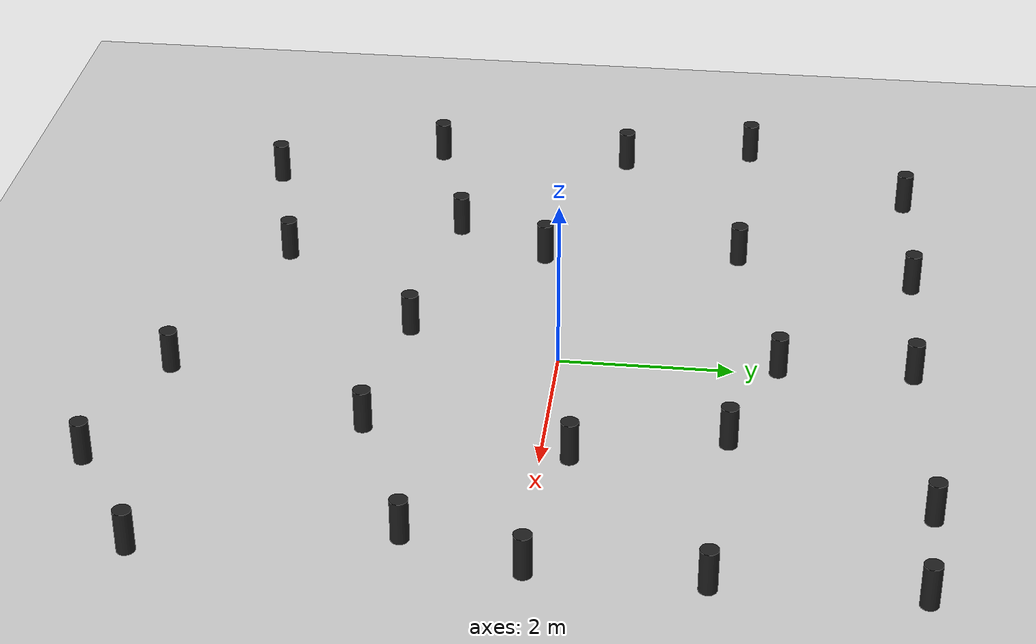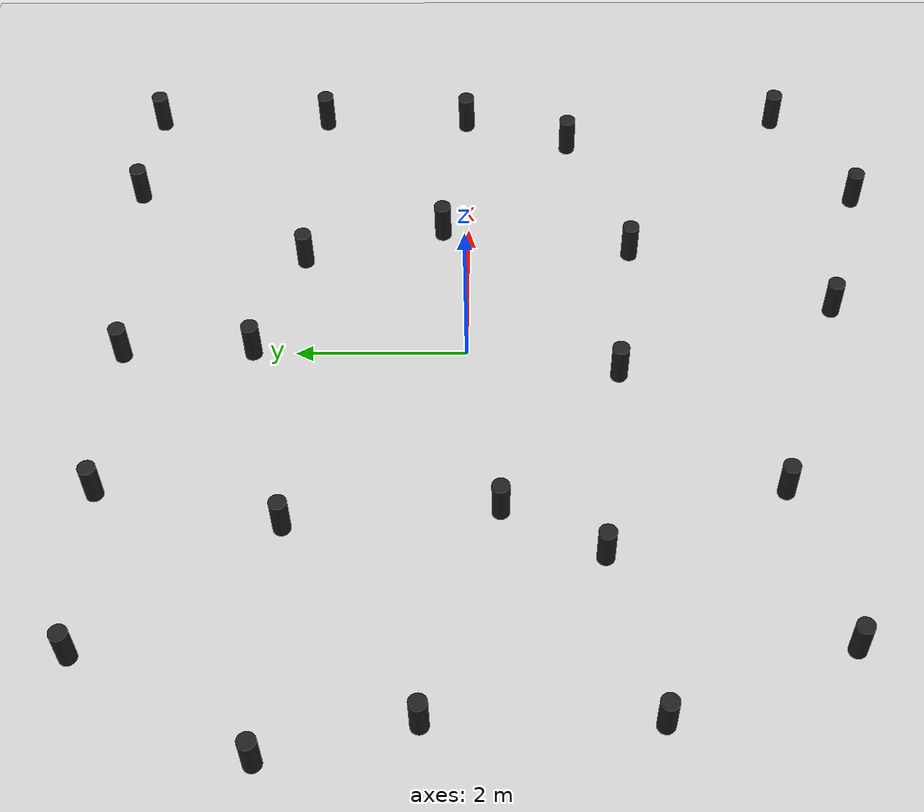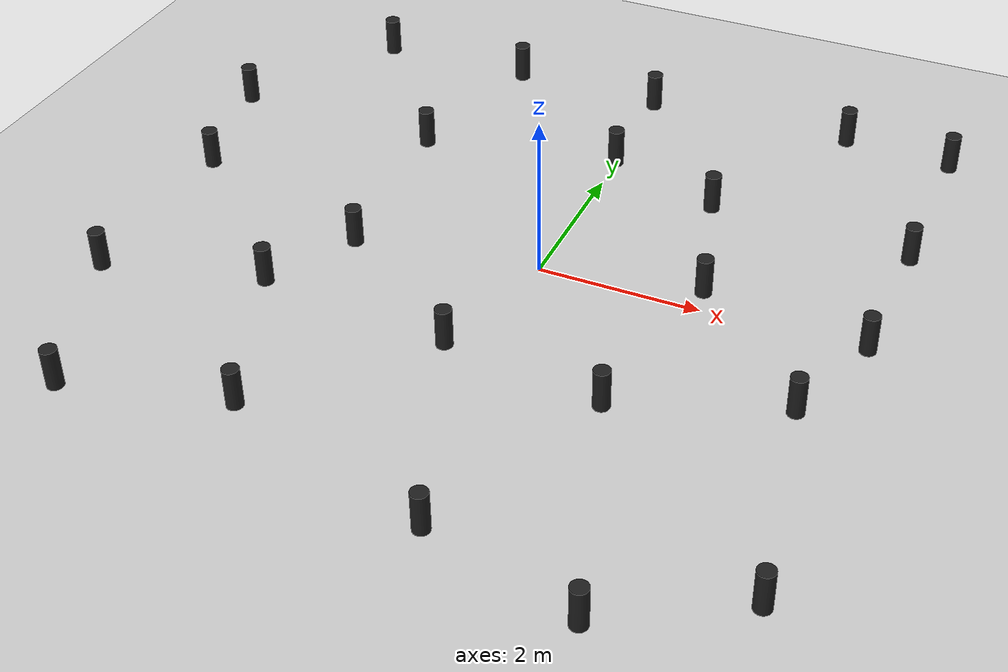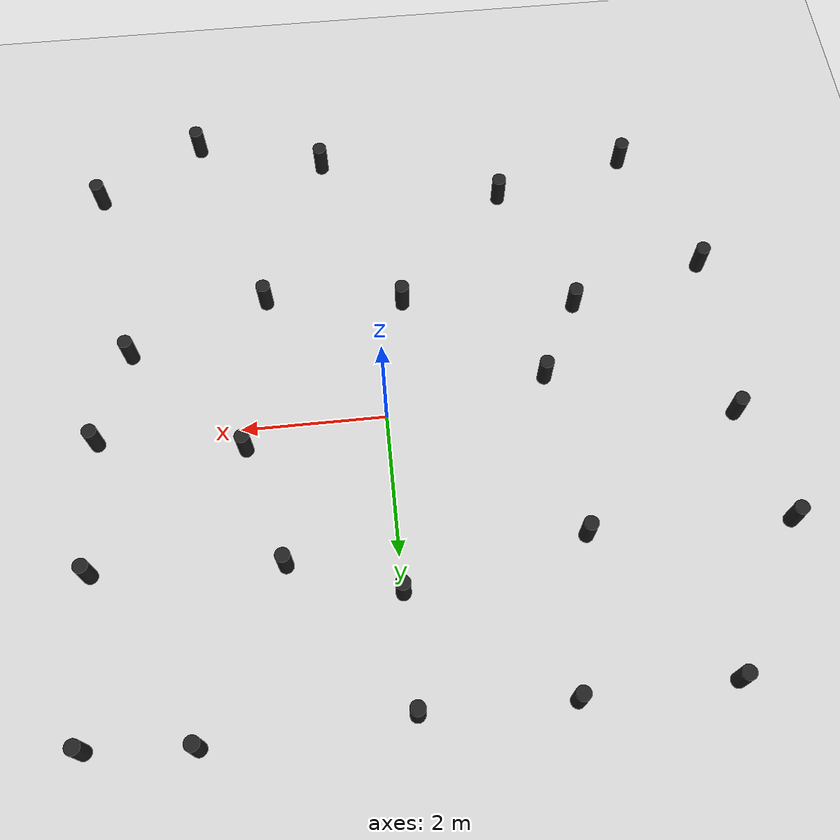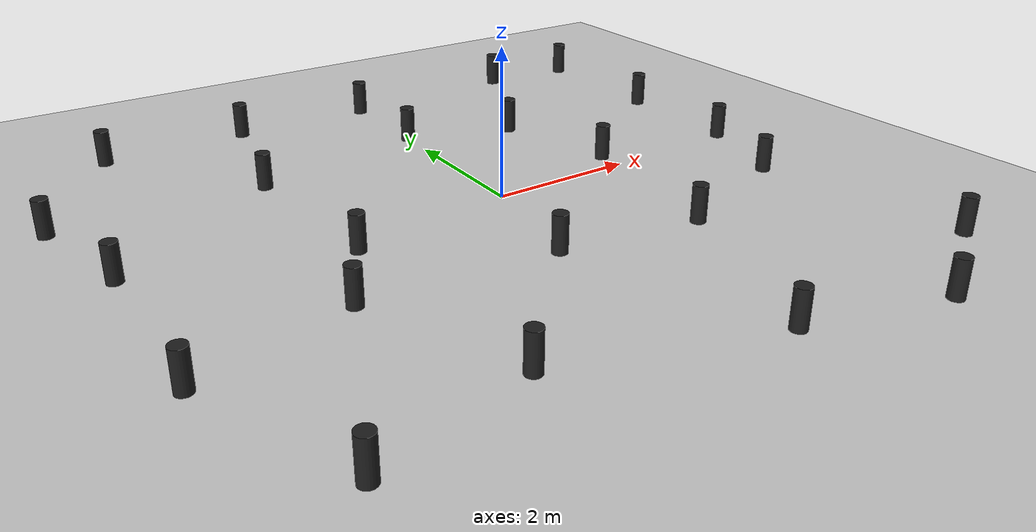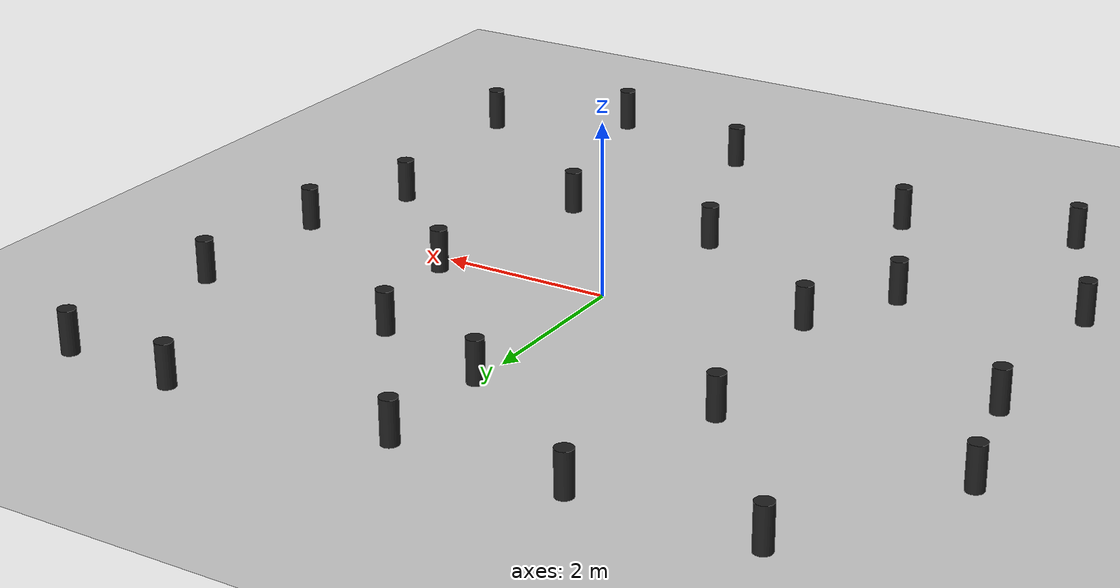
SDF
<sdf version="1.6">
 <world name="landmarks">
  <plugin filename="ignition-gazebo-contact-system" name="gz::sim::systems::Contact"/>
  <plugin filename="ignition-gazebo-imu-system" name="gz::sim::systems::Imu"/>
  <plugin filename="ignition-gazebo-physics-system" name="gz::sim::systems::Physics"/>
  <plugin filename="ignition-gazebo-scene-broadcaster-system" name="gz::sim::systems::SceneBroadcaster"/>
  <plugin filename="ignition-gazebo-sensors-system" name="gz::sim::systems::Sensors"/>
  <plugin filename="ignition-gazebo-user-commands-system" name="gz::sim::systems::UserCommands"/>
  <light name="sun" type="directional">
   <pose>0 0 10 0 -0 0</pose>
   <diffuse>0.8 0.8 0.8 1</diffuse>
   <specular>0.2 0.2 0.2 1</specular>
   <attenuation>
    <range>1000</range>
    <constant>0.9</constant>
    <linear>0.01</linear>
    <quadratic>0.001</quadratic>
   </attenuation>
   <direction>-0.5 0.1 -0.9</direction>
   <spot><inner_angle>0</inner_angle><outer_angle>0</outer_angle><falloff>0</falloff></spot>
  </light>
  <model name="ground_plane">
   <static>1</static>
   <link name="link">
    <collision name="collision">
     <geometry><plane><normal>0 0 1</normal><size>100 100</size></plane></geometry>
     <surface>
      <contact><collide_bitmask>65535</collide_bitmask></contact>
      <friction><ode><mu>100</mu><mu2>50</mu2></ode></friction>
     </surface>
    </collision>
    <visual name="visual">
     <cast_shadows>0</cast_shadows>
     <geometry><plane><normal>0 0 1</normal><size>100 100</size></plane></geometry>
     <material>
      <ambient>0.8 0.8 0.8 1</ambient>
      <diffuse>0.8 0.8 0.8 1</diffuse>
      <specular>0.8 0.8 0.8 1</specular>
     </material>
    </visual>
   </link>
  </model>
  <gravity>0 0 -9.8</gravity>
  <magnetic_field>6e-06 2.3e-05 -4.2e-05</magnetic_field>
  <atmosphere type="adiabatic"/>
  <physics name="default_physics" default="0" type="ode">
   <max_step_size>0.001</max_step_size>
   <real_time_factor>1</real_time_factor>
   <real_time_update_rate>1000</real_time_update_rate>
  </physics>
  <scene><ambient>0.4 0.4 0.4 1</ambient><background>0.7 0.7 0.7 1</background><shadows>1</shadows></scene>
  <spherical_coordinates>
   <surface_model>EARTH_WGS84</surface_model>
   <latitude_deg>0</latitude_deg>
   <longitude_deg>0</longitude_deg>
   <elevation>0</elevation>
   <heading_deg>0</heading_deg>
  </spherical_coordinates>
  <model name="cylinder">
   <link name="link">
    <inertial>
     <mass>1</mass>
     <inertia><ixx>0.145833</ixx><ixy>0</ixy><ixz>0</ixz><iyy>0.145833</iyy><iyz>0</iyz><izz>0.125</izz></inertia>
    </inertial>
    <visual name="visual">
     <geometry><cylinder><radius>0.1</radius><length>0.5</length></cylinder></geometry>
     <material>
      <script><name>Gazebo/Black</name><uri>file://media/materials/scripts/gazebo.material</uri></script>
      <shader type="vertex"><normal_map>__default__</normal_map></shader>
      <ambient>0.3 0.3 0.3 1</ambient>
      <diffuse>0.7 0.7 0.7 1</diffuse>
      <specular>0.01 0.01 0.01 1</specular>
      <emissive>0 0 0 1</emissive>
     </material>
    </visual>
    <collision name="collision">
     <geometry><cylinder><radius>0.035</radius><length>0.2</length></cylinder></geometry>
     <surface>
      <friction>
       <ode><mu>1</mu><mu2>1</mu2><fdir1>0 0 0</fdir1><slip1>0</slip1><slip2>0</slip2></ode>
       <torsional>
        <coefficient>1</coefficient>
        <patch_radius>0</patch_radius>
        <surface_radius>0</surface_radius>
        <use_patch_radius>1</use_patch_radius>
        <ode><slip>0</slip></ode>
       </torsional>
      </friction>
      <bounce><restitution_coefficient>0</restitution_coefficient><threshold>1e+06</threshold></bounce>
      <contact>
       <collide_without_contact>0</collide_without_contact>
       <collide_without_contact_bitmask>1</collide_without_contact_bitmask>
       <collide_bitmask>1</collide_bitmask>
       <ode>
        <soft_cfm>0</soft_cfm>
        <soft_erp>0.2</soft_erp>
        <kp>1e+13</kp>
        <kd>1</kd>
        <max_vel>0.01</max_vel>
        <min_depth>0</min_depth>
       </ode>
       <bullet>
        <split_impulse>1</split_impulse>
        <split_impulse_penetration_threshold>-0.01</split_impulse_penetration_threshold>
        <soft_cfm>0</soft_cfm>
        <soft_erp>0.2</soft_erp>
        <kp>1e+13</kp>
        <kd>1</kd>
       </bullet>
      </contact>
     </surface>
    </collision>
   </link>
   <static>1</static>
   <pose>-2.83111 -1.49656 0.258849 0 -0 0</pose>
  </model>
  <model name="cylinder_clone">
   <link name="link">
    <inertial>
     <mass>1</mass>
     <inertia><ixx>0.145833</ixx><ixy>0</ixy><ixz>0</ixz><iyy>0.145833</iyy><iyz>0</iyz><izz>0.125</izz></inertia>
    </inertial>
    <visual name="visual">
     <geometry><cylinder><radius>0.1</radius><length>0.5</length></cylinder></geometry>
     <material>
      <script><name>Gazebo/Black</name><uri>file://media/materials/scripts/gazebo.material</uri></script>
      <shader type="vertex"><normal_map>__default__</normal_map></shader>
      <ambient>0.3 0.3 0.3 1</ambient>
      <diffuse>0.7 0.7 0.7 1</diffuse>
      <specular>0.01 0.01 0.01 1</specular>
      <emissive>0 0 0 1</emissive>
     </material>
    </visual>
    <collision name="collision">
     <geometry><cylinder><radius>0.1</radius><length>0.2</length></cylinder></geometry>
     <surface>
      <friction>
       <ode><mu>1</mu><mu2>1</mu2><fdir1>0 0 0</fdir1><slip1>0</slip1><slip2>0</slip2></ode>
       <torsional>
        <coefficient>1</coefficient>
        <patch_radius>0</patch_radius>
        <surface_radius>0</surface_radius>
        <use_patch_radius>1</use_patch_radius>
        <ode><slip>0</slip></ode>
       </torsional>
      </friction>
      <bounce><restitution_coefficient>0</restitution_coefficient><threshold>1e+06</threshold></bounce>
      <contact>
       <collide_without_contact>0</collide_without_contact>
       <collide_without_contact_bitmask>1</collide_without_contact_bitmask>
       <collide_bitmask>1</collide_bitmask>
       <ode>
        <soft_cfm>0</soft_cfm>
        <soft_erp>0.2</soft_erp>
        <kp>1e+13</kp>
        <kd>1</kd>
        <max_vel>0.01</max_vel>
        <min_depth>0</min_depth>
       </ode>
       <bullet>
        <split_impulse>1</split_impulse>
        <split_impulse_penetration_threshold>-0.01</split_impulse_penetration_threshold>
        <soft_cfm>0</soft_cfm>
        <soft_erp>0.2</soft_erp>
        <kp>1e+13</kp>
        <kd>1</kd>
       </bullet>
      </contact>
     </surface>
    </collision>
   </link>
   <static>1</static>
   <pose>-2.45518 1.96069 0.258849 0 -0 0</pose>
  </model>
  <model name="cylinder_clone_clone">
   <link name="link">
    <inertial>
     <mass>1</mass>
     <inertia><ixx>0.145833</ixx><ixy>0</ixy><ixz>0</ixz><iyy>0.145833</iyy><iyz>0</iyz><izz>0.125</izz></inertia>
    </inertial>
    <visual name="visual">
     <geometry><cylinder><radius>0.1</radius><length>0.5</length></cylinder></geometry>
     <material>
      <script><name>Gazebo/Black</name><uri>file://media/materials/scripts/gazebo.material</uri></script>
      <shader type="vertex"><normal_map>__default__</normal_map></shader>
      <ambient>0.3 0.3 0.3 1</ambient>
      <diffuse>0.7 0.7 0.7 1</diffuse>
      <specular>0.01 0.01 0.01 1</specular>
      <emissive>0 0 0 1</emissive>
     </material>
    </visual>
    <collision name="collision">
     <geometry><cylinder><radius>0.1</radius><length>0.2</length></cylinder></geometry>
     <surface>
      <friction>
       <ode><mu>1</mu><mu2>1</mu2><fdir1>0 0 0</fdir1><slip1>0</slip1><slip2>0</slip2></ode>
       <torsional>
        <coefficient>1</coefficient>
        <patch_radius>0</patch_radius>
        <surface_radius>0</surface_radius>
        <use_patch_radius>1</use_patch_radius>
        <ode><slip>0</slip></ode>
       </torsional>
      </friction>
      <bounce><restitution_coefficient>0</restitution_coefficient><threshold>1e+06</threshold></bounce>
      <contact>
       <collide_without_contact>0</collide_without_contact>
       <collide_without_contact_bitmask>1</collide_without_contact_bitmask>
       <collide_bitmask>1</collide_bitmask>
       <ode>
        <soft_cfm>0</soft_cfm>
        <soft_erp>0.2</soft_erp>
        <kp>1e+13</kp>
        <kd>1</kd>
        <max_vel>0.01</max_vel>
        <min_depth>0</min_depth>
       </ode>
       <bullet>
        <split_impulse>1</split_impulse>
        <split_impulse_penetration_threshold>-0.01</split_impulse_penetration_threshold>
        <soft_cfm>0</soft_cfm>
        <soft_erp>0.2</soft_erp>
        <kp>1e+13</kp>
        <kd>1</kd>
       </bullet>
      </contact>
     </surface>
    </collision>
   </link>
   <static>1</static>
   <pose>-3.9406 -3.99733 0.258849 0 -0 0</pose>
  </model>
  <model name="cylinder_clone_clone_0">
   <link name="link">
    <inertial>
     <mass>1</mass>
     <inertia><ixx>0.145833</ixx><ixy>0</ixy><ixz>0</ixz><iyy>0.145833</iyy><iyz>0</iyz><izz>0.125</izz></inertia>
    </inertial>
    <visual name="visual">
     <geometry><cylinder><radius>0.1</radius><length>0.5</length></cylinder></geometry>
     <material>
      <script><name>Gazebo/Black</name><uri>file://media/materials/scripts/gazebo.material</uri></script>
      <shader type="vertex"><normal_map>__default__</normal_map></shader>
      <ambient>0.3 0.3 0.3 1</ambient>
      <diffuse>0.7 0.7 0.7 1</diffuse>
      <specular>0.01 0.01 0.01 1</specular>
      <emissive>0 0 0 1</emissive>
     </material>
    </visual>
    <collision name="collision">
     <geometry><cylinder><radius>0.1</radius><length>0.2</length></cylinder></geometry>
     <surface>
      <friction>
       <ode><mu>1</mu><mu2>1</mu2><fdir1>0 0 0</fdir1><slip1>0</slip1><slip2>0</slip2></ode>
       <torsional>
        <coefficient>1</coefficient>
        <patch_radius>0</patch_radius>
        <surface_radius>0</surface_radius>
        <use_patch_radius>1</use_patch_radius>
        <ode><slip>0</slip></ode>
       </torsional>
      </friction>
      <bounce><restitution_coefficient>0</restitution_coefficient><threshold>1e+06</threshold></bounce>
      <contact>
       <collide_without_contact>0</collide_without_contact>
       <collide_without_contact_bitmask>1</collide_without_contact_bitmask>
       <collide_bitmask>1</collide_bitmask>
       <ode>
        <soft_cfm>0</soft_cfm>
        <soft_erp>0.2</soft_erp>
        <kp>1e+13</kp>
        <kd>1</kd>
        <max_vel>0.01</max_vel>
        <min_depth>0</min_depth>
       </ode>
       <bullet>
        <split_impulse>1</split_impulse>
        <split_impulse_penetration_threshold>-0.01</split_impulse_penetration_threshold>
        <soft_cfm>0</soft_cfm>
        <soft_erp>0.2</soft_erp>
        <kp>1e+13</kp>
        <kd>1</kd>
       </bullet>
      </contact>
     </surface>
    </collision>
   </link>
   <static>1</static>
   <pose>-4.00844 3.99162 0.258849 0 -0 0</pose>
  </model>
  <model name="cylinder_clone_clone_1">
   <link name="link">
    <inertial>
     <mass>1</mass>
     <inertia><ixx>0.145833</ixx><ixy>0</ixy><ixz>0</ixz><iyy>0.145833</iyy><iyz>0</iyz><izz>0.125</izz></inertia>
    </inertial>
    <visual name="visual">
     <geometry><cylinder><radius>0.1</radius><length>0.5</length></cylinder></geometry>
     <material>
      <script><name>Gazebo/Black</name><uri>file://media/materials/scripts/gazebo.material</uri></script>
      <shader type="vertex"><normal_map>__default__</normal_map></shader>
      <ambient>0.3 0.3 0.3 1</ambient>
      <diffuse>0.7 0.7 0.7 1</diffuse>
      <specular>0.01 0.01 0.01 1</specular>
      <emissive>0 0 0 1</emissive>
     </material>
    </visual>
    <collision name="collision">
     <geometry><cylinder><radius>0.1</radius><length>0.2</length></cylinder></geometry>
     <surface>
      <friction>
       <ode><mu>1</mu><mu2>1</mu2><fdir1>0 0 0</fdir1><slip1>0</slip1><slip2>0</slip2></ode>
       <torsional>
        <coefficient>1</coefficient>
        <patch_radius>0</patch_radius>
        <surface_radius>0</surface_radius>
        <use_patch_radius>1</use_patch_radius>
        <ode><slip>0</slip></ode>
       </torsional>
      </friction>
      <bounce><restitution_coefficient>0</restitution_coefficient><threshold>1e+06</threshold></bounce>
      <contact>
       <collide_without_contact>0</collide_without_contact>
       <collide_without_contact_bitmask>1</collide_without_contact_bitmask>
       <collide_bitmask>1</collide_bitmask>
       <ode>
        <soft_cfm>0</soft_cfm>
        <soft_erp>0.2</soft_erp>
        <kp>1e+13</kp>
        <kd>1</kd>
        <max_vel>0.01</max_vel>
        <min_depth>0</min_depth>
       </ode>
       <bullet>
        <split_impulse>1</split_impulse>
        <split_impulse_penetration_threshold>-0.01</split_impulse_penetration_threshold>
        <soft_cfm>0</soft_cfm>
        <soft_erp>0.2</soft_erp>
        <kp>1e+13</kp>
        <kd>1</kd>
       </bullet>
      </contact>
     </surface>
    </collision>
   </link>
   <static>1</static>
   <pose>1.57872 -1.97923 0.258849 0 -0 0</pose>
  </model>
  <model name="cylinder_clone_clone_2">
   <link name="link">
    <inertial>
     <mass>1</mass>
     <inertia><ixx>0.145833</ixx><ixy>0</ixy><ixz>0</ixz><iyy>0.145833</iyy><iyz>0</iyz><izz>0.125</izz></inertia>
    </inertial>
    <visual name="visual">
     <geometry><cylinder><radius>0.1</radius><length>0.5</length></cylinder></geometry>
     <material>
      <script><name>Gazebo/Black</name><uri>file://media/materials/scripts/gazebo.material</uri></script>
      <shader type="vertex"><normal_map>__default__</normal_map></shader>
      <ambient>0.3 0.3 0.3 1</ambient>
      <diffuse>0.7 0.7 0.7 1</diffuse>
      <specular>0.01 0.01 0.01 1</specular>
      <emissive>0 0 0 1</emissive>
     </material>
    </visual>
    <collision name="collision">
     <geometry><cylinder><radius>0.1</radius><length>0.2</length></cylinder></geometry>
     <surface>
      <friction>
       <ode><mu>1</mu><mu2>1</mu2><fdir1>0 0 0</fdir1><slip1>0</slip1><slip2>0</slip2></ode>
       <torsional>
        <coefficient>1</coefficient>
        <patch_radius>0</patch_radius>
        <surface_radius>0</surface_radius>
        <use_patch_radius>1</use_patch_radius>
        <ode><slip>0</slip></ode>
       </torsional>
      </friction>
      <bounce><restitution_coefficient>0</restitution_coefficient><threshold>1e+06</threshold></bounce>
      <contact>
       <collide_without_contact>0</collide_without_contact>
       <collide_without_contact_bitmask>1</collide_without_contact_bitmask>
       <collide_bitmask>1</collide_bitmask>
       <ode>
        <soft_cfm>0</soft_cfm>
        <soft_erp>0.2</soft_erp>
        <kp>1e+13</kp>
        <kd>1</kd>
        <max_vel>0.01</max_vel>
        <min_depth>0</min_depth>
       </ode>
       <bullet>
        <split_impulse>1</split_impulse>
        <split_impulse_penetration_threshold>-0.01</split_impulse_penetration_threshold>
        <soft_cfm>0</soft_cfm>
        <soft_erp>0.2</soft_erp>
        <kp>1e+13</kp>
        <kd>1</kd>
       </bullet>
      </contact>
     </surface>
    </collision>
   </link>
   <static>1</static>
   <pose>1.46099 1.99578 0.258849 0 -0 0</pose>
  </model>
  <model name="cylinder_clone_clone_3">
   <link name="link">
    <inertial>
     <mass>1</mass>
     <inertia><ixx>0.145833</ixx><ixy>0</ixy><ixz>0</ixz><iyy>0.145833</iyy><iyz>0</iyz><izz>0.125</izz></inertia>
    </inertial>
    <visual name="visual">
     <geometry><cylinder><radius>0.1</radius><length>0.5</length></cylinder></geometry>
     <material>
      <script><name>Gazebo/Black</name><uri>file://media/materials/scripts/gazebo.material</uri></script>
      <shader type="vertex"><normal_map>__default__</normal_map></shader>
      <ambient>0.3 0.3 0.3 1</ambient>
      <diffuse>0.7 0.7 0.7 1</diffuse>
      <specular>0.01 0.01 0.01 1</specular>
      <emissive>0 0 0 1</emissive>
     </material>
    </visual>
    <collision name="collision">
     <geometry><cylinder><radius>0.1</radius><length>0.2</length></cylinder></geometry>
     <surface>
      <friction>
       <ode><mu>1</mu><mu2>1</mu2><fdir1>0 0 0</fdir1><slip1>0</slip1><slip2>0</slip2></ode>
       <torsional>
        <coefficient>1</coefficient>
        <patch_radius>0</patch_radius>
        <surface_radius>0</surface_radius>
        <use_patch_radius>1</use_patch_radius>
        <ode><slip>0</slip></ode>
       </torsional>
      </friction>
      <bounce><restitution_coefficient>0</restitution_coefficient><threshold>1e+06</threshold></bounce>
      <contact>
       <collide_without_contact>0</collide_without_contact>
       <collide_without_contact_bitmask>1</collide_without_contact_bitmask>
       <collide_bitmask>1</collide_bitmask>
       <ode>
        <soft_cfm>0</soft_cfm>
        <soft_erp>0.2</soft_erp>
        <kp>1e+13</kp>
        <kd>1</kd>
        <max_vel>0.01</max_vel>
        <min_depth>0</min_depth>
       </ode>
       <bullet>
        <split_impulse>1</split_impulse>
        <split_impulse_penetration_threshold>-0.01</split_impulse_penetration_threshold>
        <soft_cfm>0</soft_cfm>
        <soft_erp>0.2</soft_erp>
        <kp>1e+13</kp>
        <kd>1</kd>
       </bullet>
      </contact>
     </surface>
    </collision>
   </link>
   <static>1</static>
   <pose>3.96666 4.06132 0.258849 0 -0 0</pose>
  </model>
  <model name="cylinder_clone_clone_4">
   <link name="link">
    <inertial>
     <mass>1</mass>
     <inertia><ixx>0.145833</ixx><ixy>0</ixy><ixz>0</ixz><iyy>0.145833</iyy><iyz>0</iyz><izz>0.125</izz></inertia>
    </inertial>
    <visual name="visual">
     <geometry><cylinder><radius>0.1</radius><length>0.5</length></cylinder></geometry>
     <material>
      <script><name>Gazebo/Black</name><uri>file://media/materials/scripts/gazebo.material</uri></script>
      <shader type="vertex"><normal_map>__default__</normal_map></shader>
      <ambient>0.3 0.3 0.3 1</ambient>
      <diffuse>0.7 0.7 0.7 1</diffuse>
      <specular>0.01 0.01 0.01 1</specular>
      <emissive>0 0 0 1</emissive>
     </material>
    </visual>
    <collision name="collision">
     <geometry><cylinder><radius>0.1</radius><length>0.2</length></cylinder></geometry>
     <surface>
      <friction>
       <ode><mu>1</mu><mu2>1</mu2><fdir1>0 0 0</fdir1><slip1>0</slip1><slip2>0</slip2></ode>
       <torsional>
        <coefficient>1</coefficient>
        <patch_radius>0</patch_radius>
        <surface_radius>0</surface_radius>
        <use_patch_radius>1</use_patch_radius>
        <ode><slip>0</slip></ode>
       </torsional>
      </friction>
      <bounce><restitution_coefficient>0</restitution_coefficient><threshold>1e+06</threshold></bounce>
      <contact>
       <collide_without_contact>0</collide_without_contact>
       <collide_without_contact_bitmask>1</collide_without_contact_bitmask>
       <collide_bitmask>1</collide_bitmask>
       <ode>
        <soft_cfm>0</soft_cfm>
        <soft_erp>0.2</soft_erp>
        <kp>1e+13</kp>
        <kd>1</kd>
        <max_vel>0.01</max_vel>
        <min_depth>0</min_depth>
       </ode>
       <bullet>
        <split_impulse>1</split_impulse>
        <split_impulse_penetration_threshold>-0.01</split_impulse_penetration_threshold>
        <soft_cfm>0</soft_cfm>
        <soft_erp>0.2</soft_erp>
        <kp>1e+13</kp>
        <kd>1</kd>
       </bullet>
      </contact>
     </surface>
    </collision>
   </link>
   <static>1</static>
   <pose>3.98696 -3.99368 0.258849 0 -0 0</pose>
  </model>
  <model name="cylinder_clone_clone_5">
   <link name="link">
    <inertial>
     <mass>1</mass>
     <inertia><ixx>0.145833</ixx><ixy>0</ixy><ixz>0</ixz><iyy>0.145833</iyy><iyz>0</iyz><izz>0.125</izz></inertia>
    </inertial>
    <visual name="visual">
     <geometry><cylinder><radius>0.1</radius><length>0.5</length></cylinder></geometry>
     <material>
      <script><name>Gazebo/Black</name><uri>file://media/materials/scripts/gazebo.material</uri></script>
      <shader type="vertex"><normal_map>__default__</normal_map></shader>
      <ambient>0.3 0.3 0.3 1</ambient>
      <diffuse>0.7 0.7 0.7 1</diffuse>
      <specular>0.01 0.01 0.01 1</specular>
      <emissive>0 0 0 1</emissive>
     </material>
    </visual>
    <collision name="collision">
     <geometry><cylinder><radius>0.1</radius><length>0.2</length></cylinder></geometry>
     <surface>
      <friction>
       <ode><mu>1</mu><mu2>1</mu2><fdir1>0 0 0</fdir1><slip1>0</slip1><slip2>0</slip2></ode>
       <torsional>
        <coefficient>1</coefficient>
        <patch_radius>0</patch_radius>
        <surface_radius>0</surface_radius>
        <use_patch_radius>1</use_patch_radius>
        <ode><slip>0</slip></ode>
       </torsional>
      </friction>
      <bounce><restitution_coefficient>0</restitution_coefficient><threshold>1e+06</threshold></bounce>
      <contact>
       <collide_without_contact>0</collide_without_contact>
       <collide_without_contact_bitmask>1</collide_without_contact_bitmask>
       <collide_bitmask>1</collide_bitmask>
       <ode>
        <soft_cfm>0</soft_cfm>
        <soft_erp>0.2</soft_erp>
        <kp>1e+13</kp>
        <kd>1</kd>
        <max_vel>0.01</max_vel>
        <min_depth>0</min_depth>
       </ode>
       <bullet>
        <split_impulse>1</split_impulse>
        <split_impulse_penetration_threshold>-0.01</split_impulse_penetration_threshold>
        <soft_cfm>0</soft_cfm>
        <soft_erp>0.2</soft_erp>
        <kp>1e+13</kp>
        <kd>1</kd>
       </bullet>
      </contact>
     </surface>
    </collision>
   </link>
   <static>1</static>
   <pose>3.50052 -1.26595 0.258849 0 -0 0</pose>
  </model>
  <model name="cylinder_clone_clone_6">
   <link name="link">
    <inertial>
     <mass>1</mass>
     <inertia><ixx>0.145833</ixx><ixy>0</ixy><ixz>0</ixz><iyy>0.145833</iyy><iyz>0</iyz><izz>0.125</izz></inertia>
    </inertial>
    <visual name="visual">
     <geometry><cylinder><radius>0.1</radius><length>0.5</length></cylinder></geometry>
     <material>
      <script><name>Gazebo/Black</name><uri>file://media/materials/scripts/gazebo.material</uri></script>
      <shader type="vertex"><normal_map>__default__</normal_map></shader>
      <ambient>0.3 0.3 0.3 1</ambient>
      <diffuse>0.7 0.7 0.7 1</diffuse>
      <specular>0.01 0.01 0.01 1</specular>
      <emissive>0 0 0 1</emissive>
     </material>
    </visual>
    <collision name="collision">
     <geometry><cylinder><radius>0.1</radius><length>0.2</length></cylinder></geometry>
     <surface>
      <friction>
       <ode><mu>1</mu><mu2>1</mu2><fdir1>0 0 0</fdir1><slip1>0</slip1><slip2>0</slip2></ode>
       <torsional>
        <coefficient>1</coefficient>
        <patch_radius>0</patch_radius>
        <surface_radius>0</surface_radius>
        <use_patch_radius>1</use_patch_radius>
        <ode><slip>0</slip></ode>
       </torsional>
      </friction>
      <bounce><restitution_coefficient>0</restitution_coefficient><threshold>1e+06</threshold></bounce>
      <contact>
       <collide_without_contact>0</collide_without_contact>
       <collide_without_contact_bitmask>1</collide_without_contact_bitmask>
       <collide_bitmask>1</collide_bitmask>
       <ode>
        <soft_cfm>0</soft_cfm>
        <soft_erp>0.2</soft_erp>
        <kp>1e+13</kp>
        <kd>1</kd>
        <max_vel>0.01</max_vel>
        <min_depth>0</min_depth>
       </ode>
       <bullet>
        <split_impulse>1</split_impulse>
        <split_impulse_penetration_threshold>-0.01</split_impulse_penetration_threshold>
        <soft_cfm>0</soft_cfm>
        <soft_erp>0.2</soft_erp>
        <kp>1e+13</kp>
        <kd>1</kd>
       </bullet>
      </contact>
     </surface>
    </collision>
   </link>
   <static>1</static>
   <pose>1.93129 0.317344 0.258849 0 -0 0</pose>
  </model>
  <model name="cylinder_clone_clone_7">
   <link name="link">
    <inertial>
     <mass>1</mass>
     <inertia><ixx>0.145833</ixx><ixy>0</ixy><ixz>0</ixz><iyy>0.145833</iyy><iyz>0</iyz><izz>0.125</izz></inertia>
    </inertial>
    <visual name="visual">
     <geometry><cylinder><radius>0.1</radius><length>0.5</length></cylinder></geometry>
     <material>
      <script><name>Gazebo/Black</name><uri>file://media/materials/scripts/gazebo.material</uri></script>
      <shader type="vertex"><normal_map>__default__</normal_map></shader>
      <ambient>0.3 0.3 0.3 1</ambient>
      <diffuse>0.7 0.7 0.7 1</diffuse>
      <specular>0.01 0.01 0.01 1</specular>
      <emissive>0 0 0 1</emissive>
     </material>
    </visual>
    <collision name="collision">
     <geometry><cylinder><radius>0.1</radius><length>0.2</length></cylinder></geometry>
     <surface>
      <friction>
       <ode><mu>1</mu><mu2>1</mu2><fdir1>0 0 0</fdir1><slip1>0</slip1><slip2>0</slip2></ode>
       <torsional>
        <coefficient>1</coefficient>
        <patch_radius>0</patch_radius>
        <surface_radius>0</surface_radius>
        <use_patch_radius>1</use_patch_radius>
        <ode><slip>0</slip></ode>
       </torsional>
      </friction>
      <bounce><restitution_coefficient>0</restitution_coefficient><threshold>1e+06</threshold></bounce>
      <contact>
       <collide_without_contact>0</collide_without_contact>
       <collide_without_contact_bitmask>1</collide_without_contact_bitmask>
       <collide_bitmask>1</collide_bitmask>
       <ode>
        <soft_cfm>0</soft_cfm>
        <soft_erp>0.2</soft_erp>
        <kp>1e+13</kp>
        <kd>1</kd>
        <max_vel>0.01</max_vel>
        <min_depth>0</min_depth>
       </ode>
       <bullet>
        <split_impulse>1</split_impulse>
        <split_impulse_penetration_threshold>-0.01</split_impulse_penetration_threshold>
        <soft_cfm>0</soft_cfm>
        <soft_erp>0.2</soft_erp>
        <kp>1e+13</kp>
        <kd>1</kd>
       </bullet>
      </contact>
     </surface>
    </collision>
   </link>
   <static>1</static>
   <pose>3.93814 0.044862 0.258849 0 -0 0</pose>
  </model>
  <model name="cylinder_clone_clone_8">
   <link name="link">
    <inertial>
     <mass>1</mass>
     <inertia><ixx>0.145833</ixx><ixy>0</ixy><ixz>0</ixz><iyy>0.145833</iyy><iyz>0</iyz><izz>0.125</izz></inertia>
    </inertial>
    <visual name="visual">
     <geometry><cylinder><radius>0.1</radius><length>0.5</length></cylinder></geometry>
     <material>
      <script><name>Gazebo/Black</name><uri>file://media/materials/scripts/gazebo.material</uri></script>
      <shader type="vertex"><normal_map>__default__</normal_map></shader>
      <ambient>0.3 0.3 0.3 1</ambient>
      <diffuse>0.7 0.7 0.7 1</diffuse>
      <specular>0.01 0.01 0.01 1</specular>
      <emissive>0 0 0 1</emissive>
     </material>
    </visual>
    <collision name="collision">
     <geometry><cylinder><radius>0.1</radius><length>0.2</length></cylinder></geometry>
     <surface>
      <friction>
       <ode><mu>1</mu><mu2>1</mu2><fdir1>0 0 0</fdir1><slip1>0</slip1><slip2>0</slip2></ode>
       <torsional>
        <coefficient>1</coefficient>
        <patch_radius>0</patch_radius>
        <surface_radius>0</surface_radius>
        <use_patch_radius>1</use_patch_radius>
        <ode><slip>0</slip></ode>
       </torsional>
      </friction>
      <bounce><restitution_coefficient>0</restitution_coefficient><threshold>1e+06</threshold></bounce>
      <contact>
       <collide_without_contact>0</collide_without_contact>
       <collide_without_contact_bitmask>1</collide_without_contact_bitmask>
       <collide_bitmask>1</collide_bitmask>
       <ode>
        <soft_cfm>0</soft_cfm>
        <soft_erp>0.2</soft_erp>
        <kp>1e+13</kp>
        <kd>1</kd>
        <max_vel>0.01</max_vel>
        <min_depth>0</min_depth>
       </ode>
       <bullet>
        <split_impulse>1</split_impulse>
        <split_impulse_penetration_threshold>-0.01</split_impulse_penetration_threshold>
        <soft_cfm>0</soft_cfm>
        <soft_erp>0.2</soft_erp>
        <kp>1e+13</kp>
        <kd>1</kd>
       </bullet>
      </contact>
     </surface>
    </collision>
   </link>
   <static>1</static>
   <pose>3.97041 1.89034 0.258849 0 -0 0</pose>
  </model>
  <model name="cylinder_clone_clone_9">
   <link name="link">
    <inertial>
     <mass>1</mass>
     <inertia><ixx>0.145833</ixx><ixy>0</ixy><ixz>0</ixz><iyy>0.145833</iyy><iyz>0</iyz><izz>0.125</izz></inertia>
    </inertial>
    <visual name="visual">
     <geometry><cylinder><radius>0.1</radius><length>0.5</length></cylinder></geometry>
     <material>
      <script><name>Gazebo/Black</name><uri>file://media/materials/scripts/gazebo.material</uri></script>
      <shader type="vertex"><normal_map>__default__</normal_map></shader>
      <ambient>0.3 0.3 0.3 1</ambient>
      <diffuse>0.7 0.7 0.7 1</diffuse>
      <specular>0.01 0.01 0.01 1</specular>
      <emissive>0 0 0 1</emissive>
     </material>
    </visual>
    <collision name="collision">
     <geometry><cylinder><radius>0.1</radius><length>0.2</length></cylinder></geometry>
     <surface>
      <friction>
       <ode><mu>1</mu><mu2>1</mu2><fdir1>0 0 0</fdir1><slip1>0</slip1><slip2>0</slip2></ode>
       <torsional>
        <coefficient>1</coefficient>
        <patch_radius>0</patch_radius>
        <surface_radius>0</surface_radius>
        <use_patch_radius>1</use_patch_radius>
        <ode><slip>0</slip></ode>
       </torsional>
      </friction>
      <bounce><restitution_coefficient>0</restitution_coefficient><threshold>1e+06</threshold></bounce>
      <contact>
       <collide_without_contact>0</collide_without_contact>
       <collide_without_contact_bitmask>1</collide_without_contact_bitmask>
       <collide_bitmask>1</collide_bitmask>
       <ode>
        <soft_cfm>0</soft_cfm>
        <soft_erp>0.2</soft_erp>
        <kp>1e+13</kp>
        <kd>1</kd>
        <max_vel>0.01</max_vel>
        <min_depth>0</min_depth>
       </ode>
       <bullet>
        <split_impulse>1</split_impulse>
        <split_impulse_penetration_threshold>-0.01</split_impulse_penetration_threshold>
        <soft_cfm>0</soft_cfm>
        <soft_erp>0.2</soft_erp>
        <kp>1e+13</kp>
        <kd>1</kd>
       </bullet>
      </contact>
     </surface>
    </collision>
   </link>
   <static>1</static>
   <pose>2.59329 4.15473 0.258849 0 -0 0</pose>
  </model>
  <model name="cylinder_clone_clone_10">
   <link name="link">
    <inertial>
     <mass>1</mass>
     <inertia><ixx>0.145833</ixx><ixy>0</ixy><ixz>0</ixz><iyy>0.145833</iyy><iyz>0</iyz><izz>0.125</izz></inertia>
    </inertial>
    <visual name="visual">
     <geometry><cylinder><radius>0.1</radius><length>0.5</length></cylinder></geometry>
     <material>
      <script><name>Gazebo/Black</name><uri>file://media/materials/scripts/gazebo.material</uri></script>
      <shader type="vertex"><normal_map>__default__</normal_map></shader>
      <ambient>0.3 0.3 0.3 1</ambient>
      <diffuse>0.7 0.7 0.7 1</diffuse>
      <specular>0.01 0.01 0.01 1</specular>
      <emissive>0 0 0 1</emissive>
     </material>
    </visual>
    <collision name="collision">
     <geometry><cylinder><radius>0.1</radius><length>0.2</length></cylinder></geometry>
     <surface>
      <friction>
       <ode><mu>1</mu><mu2>1</mu2><fdir1>0 0 0</fdir1><slip1>0</slip1><slip2>0</slip2></ode>
       <torsional>
        <coefficient>1</coefficient>
        <patch_radius>0</patch_radius>
        <surface_radius>0</surface_radius>
        <use_patch_radius>1</use_patch_radius>
        <ode><slip>0</slip></ode>
       </torsional>
      </friction>
      <bounce><restitution_coefficient>0</restitution_coefficient><threshold>1e+06</threshold></bounce>
      <contact>
       <collide_without_contact>0</collide_without_contact>
       <collide_without_contact_bitmask>1</collide_without_contact_bitmask>
       <collide_bitmask>1</collide_bitmask>
       <ode>
        <soft_cfm>0</soft_cfm>
        <soft_erp>0.2</soft_erp>
        <kp>1e+13</kp>
        <kd>1</kd>
        <max_vel>0.01</max_vel>
        <min_depth>0</min_depth>
       </ode>
       <bullet>
        <split_impulse>1</split_impulse>
        <split_impulse_penetration_threshold>-0.01</split_impulse_penetration_threshold>
        <soft_cfm>0</soft_cfm>
        <soft_erp>0.2</soft_erp>
        <kp>1e+13</kp>
        <kd>1</kd>
       </bullet>
      </contact>
     </surface>
    </collision>
   </link>
   <static>1</static>
   <pose>-0.046083 4.01678 0.258849 0 -0 0</pose>
  </model>
  <model name="cylinder_clone_clone_11">
   <link name="link">
    <inertial>
     <mass>1</mass>
     <inertia><ixx>0.145833</ixx><ixy>0</ixy><ixz>0</ixz><iyy>0.145833</iyy><iyz>0</iyz><izz>0.125</izz></inertia>
    </inertial>
    <visual name="visual">
     <geometry><cylinder><radius>0.1</radius><length>0.5</length></cylinder></geometry>
     <material>
      <script><name>Gazebo/Black</name><uri>file://media/materials/scripts/gazebo.material</uri></script>
      <shader type="vertex"><normal_map>__default__</normal_map></shader>
      <ambient>0.3 0.3 0.3 1</ambient>
      <diffuse>0.7 0.7 0.7 1</diffuse>
      <specular>0.01 0.01 0.01 1</specular>
      <emissive>0 0 0 1</emissive>
     </material>
    </visual>
    <collision name="collision">
     <geometry><cylinder><radius>0.1</radius><length>0.2</length></cylinder></geometry>
     <surface>
      <friction>
       <ode><mu>1</mu><mu2>1</mu2><fdir1>0 0 0</fdir1><slip1>0</slip1><slip2>0</slip2></ode>
       <torsional>
        <coefficient>1</coefficient>
        <patch_radius>0</patch_radius>
        <surface_radius>0</surface_radius>
        <use_patch_radius>1</use_patch_radius>
        <ode><slip>0</slip></ode>
       </torsional>
      </friction>
      <bounce><restitution_coefficient>0</restitution_coefficient><threshold>1e+06</threshold></bounce>
      <contact>
       <collide_without_contact>0</collide_without_contact>
       <collide_without_contact_bitmask>1</collide_without_contact_bitmask>
       <collide_bitmask>1</collide_bitmask>
       <ode>
        <soft_cfm>0</soft_cfm>
        <soft_erp>0.2</soft_erp>
        <kp>1e+13</kp>
        <kd>1</kd>
        <max_vel>0.01</max_vel>
        <min_depth>0</min_depth>
       </ode>
       <bullet>
        <split_impulse>1</split_impulse>
        <split_impulse_penetration_threshold>-0.01</split_impulse_penetration_threshold>
        <soft_cfm>0</soft_cfm>
        <soft_erp>0.2</soft_erp>
        <kp>1e+13</kp>
        <kd>1</kd>
       </bullet>
      </contact>
     </surface>
    </collision>
   </link>
   <static>1</static>
   <pose>-2.00799 4.03967 0.258849 0 -0 0</pose>
  </model>
  <model name="cylinder_clone_clone_12">
   <link name="link">
    <inertial>
     <mass>1</mass>
     <inertia><ixx>0.145833</ixx><ixy>0</ixy><ixz>0</ixz><iyy>0.145833</iyy><iyz>0</iyz><izz>0.125</izz></inertia>
    </inertial>
    <visual name="visual">
     <geometry><cylinder><radius>0.1</radius><length>0.5</length></cylinder></geometry>
     <material>
      <script><name>Gazebo/Black</name><uri>file://media/materials/scripts/gazebo.material</uri></script>
      <shader type="vertex"><normal_map>__default__</normal_map></shader>
      <ambient>0.3 0.3 0.3 1</ambient>
      <diffuse>0.7 0.7 0.7 1</diffuse>
      <specular>0.01 0.01 0.01 1</specular>
      <emissive>0 0 0 1</emissive>
     </material>
    </visual>
    <collision name="collision">
     <geometry><cylinder><radius>0.1</radius><length>0.2</length></cylinder></geometry>
     <surface>
      <friction>
       <ode><mu>1</mu><mu2>1</mu2><fdir1>0 0 0</fdir1><slip1>0</slip1><slip2>0</slip2></ode>
       <torsional>
        <coefficient>1</coefficient>
        <patch_radius>0</patch_radius>
        <surface_radius>0</surface_radius>
        <use_patch_radius>1</use_patch_radius>
        <ode><slip>0</slip></ode>
       </torsional>
      </friction>
      <bounce><restitution_coefficient>0</restitution_coefficient><threshold>1e+06</threshold></bounce>
      <contact>
       <collide_without_contact>0</collide_without_contact>
       <collide_without_contact_bitmask>1</collide_without_contact_bitmask>
       <collide_bitmask>1</collide_bitmask>
       <ode>
        <soft_cfm>0</soft_cfm>
        <soft_erp>0.2</soft_erp>
        <kp>1e+13</kp>
        <kd>1</kd>
        <max_vel>0.01</max_vel>
        <min_depth>0</min_depth>
       </ode>
       <bullet>
        <split_impulse>1</split_impulse>
        <split_impulse_penetration_threshold>-0.01</split_impulse_penetration_threshold>
        <soft_cfm>0</soft_cfm>
        <soft_erp>0.2</soft_erp>
        <kp>1e+13</kp>
        <kd>1</kd>
       </bullet>
      </contact>
     </surface>
    </collision>
   </link>
   <static>1</static>
   <pose>-0.009716 2.4976 0.258849 0 -0 0</pose>
  </model>
  <model name="cylinder_clone_clone_13">
   <link name="link">
    <inertial>
     <mass>1</mass>
     <inertia><ixx>0.145833</ixx><ixy>0</ixy><ixz>0</ixz><iyy>0.145833</iyy><iyz>0</iyz><izz>0.125</izz></inertia>
    </inertial>
    <visual name="visual">
     <geometry><cylinder><radius>0.1</radius><length>0.5</length></cylinder></geometry>
     <material>
      <script><name>Gazebo/Black</name><uri>file://media/materials/scripts/gazebo.material</uri></script>
      <shader type="vertex"><normal_map>__default__</normal_map></shader>
      <ambient>0.3 0.3 0.3 1</ambient>
      <diffuse>0.7 0.7 0.7 1</diffuse>
      <specular>0.01 0.01 0.01 1</specular>
      <emissive>0 0 0 1</emissive>
     </material>
    </visual>
    <collision name="collision">
     <geometry><cylinder><radius>0.1</radius><length>0.2</length></cylinder></geometry>
     <surface>
      <friction>
       <ode><mu>1</mu><mu2>1</mu2><fdir1>0 0 0</fdir1><slip1>0</slip1><slip2>0</slip2></ode>
       <torsional>
        <coefficient>1</coefficient>
        <patch_radius>0</patch_radius>
        <surface_radius>0</surface_radius>
        <use_patch_radius>1</use_patch_radius>
        <ode><slip>0</slip></ode>
       </torsional>
      </friction>
      <bounce><restitution_coefficient>0</restitution_coefficient><threshold>1e+06</threshold></bounce>
      <contact>
       <collide_without_contact>0</collide_without_contact>
       <collide_without_contact_bitmask>1</collide_without_contact_bitmask>
       <collide_bitmask>1</collide_bitmask>
       <ode>
        <soft_cfm>0</soft_cfm>
        <soft_erp>0.2</soft_erp>
        <kp>1e+13</kp>
        <kd>1</kd>
        <max_vel>0.01</max_vel>
        <min_depth>0</min_depth>
       </ode>
       <bullet>
        <split_impulse>1</split_impulse>
        <split_impulse_penetration_threshold>-0.01</split_impulse_penetration_threshold>
        <soft_cfm>0</soft_cfm>
        <soft_erp>0.2</soft_erp>
        <kp>1e+13</kp>
        <kd>1</kd>
       </bullet>
      </contact>
     </surface>
    </collision>
   </link>
   <static>1</static>
   <pose>-5.16728 2.01619 0.258849 0 -0 0</pose>
  </model>
  <model name="cylinder_clone_clone_14">
   <link name="link">
    <inertial>
     <mass>1</mass>
     <inertia><ixx>0.145833</ixx><ixy>0</ixy><ixz>0</ixz><iyy>0.145833</iyy><iyz>0</iyz><izz>0.125</izz></inertia>
    </inertial>
    <visual name="visual">
     <geometry><cylinder><radius>0.1</radius><length>0.5</length></cylinder></geometry>
     <material>
      <script><name>Gazebo/Black</name><uri>file://media/materials/scripts/gazebo.material</uri></script>
      <shader type="vertex"><normal_map>__default__</normal_map></shader>
      <ambient>0.3 0.3 0.3 1</ambient>
      <diffuse>0.7 0.7 0.7 1</diffuse>
      <specular>0.01 0.01 0.01 1</specular>
      <emissive>0 0 0 1</emissive>
     </material>
    </visual>
    <collision name="collision">
     <geometry><cylinder><radius>0.1</radius><length>0.2</length></cylinder></geometry>
     <surface>
      <friction>
       <ode><mu>1</mu><mu2>1</mu2><fdir1>0 0 0</fdir1><slip1>0</slip1><slip2>0</slip2></ode>
       <torsional>
        <coefficient>1</coefficient>
        <patch_radius>0</patch_radius>
        <surface_radius>0</surface_radius>
        <use_patch_radius>1</use_patch_radius>
        <ode><slip>0</slip></ode>
       </torsional>
      </friction>
      <bounce><restitution_coefficient>0</restitution_coefficient><threshold>1e+06</threshold></bounce>
      <contact>
       <collide_without_contact>0</collide_without_contact>
       <collide_without_contact_bitmask>1</collide_without_contact_bitmask>
       <collide_bitmask>1</collide_bitmask>
       <ode>
        <soft_cfm>0</soft_cfm>
        <soft_erp>0.2</soft_erp>
        <kp>1e+13</kp>
        <kd>1</kd>
        <max_vel>0.01</max_vel>
        <min_depth>0</min_depth>
       </ode>
       <bullet>
        <split_impulse>1</split_impulse>
        <split_impulse_penetration_threshold>-0.01</split_impulse_penetration_threshold>
        <soft_cfm>0</soft_cfm>
        <soft_erp>0.2</soft_erp>
        <kp>1e+13</kp>
        <kd>1</kd>
       </bullet>
      </contact>
     </surface>
    </collision>
   </link>
   <static>1</static>
   <pose>-4.7681 0.418207 0.258849 0 -0 0</pose>
  </model>
  <model name="cylinder_clone_clone_15">
   <link name="link">
    <inertial>
     <mass>1</mass>
     <inertia><ixx>0.145833</ixx><ixy>0</ixy><ixz>0</ixz><iyy>0.145833</iyy><iyz>0</iyz><izz>0.125</izz></inertia>
    </inertial>
    <visual name="visual">
     <geometry><cylinder><radius>0.1</radius><length>0.5</length></cylinder></geometry>
     <material>
      <script><name>Gazebo/Black</name><uri>file://media/materials/scripts/gazebo.material</uri></script>
      <shader type="vertex"><normal_map>__default__</normal_map></shader>
      <ambient>0.3 0.3 0.3 1</ambient>
      <diffuse>0.7 0.7 0.7 1</diffuse>
      <specular>0.01 0.01 0.01 1</specular>
      <emissive>0 0 0 1</emissive>
     </material>
    </visual>
    <collision name="collision">
     <geometry><cylinder><radius>0.1</radius><length>0.2</length></cylinder></geometry>
     <surface>
      <friction>
       <ode><mu>1</mu><mu2>1</mu2><fdir1>0 0 0</fdir1><slip1>0</slip1><slip2>0</slip2></ode>
       <torsional>
        <coefficient>1</coefficient>
        <patch_radius>0</patch_radius>
        <surface_radius>0</surface_radius>
        <use_patch_radius>1</use_patch_radius>
        <ode><slip>0</slip></ode>
       </torsional>
      </friction>
      <bounce><restitution_coefficient>0</restitution_coefficient><threshold>1e+06</threshold></bounce>
      <contact>
       <collide_without_contact>0</collide_without_contact>
       <collide_without_contact_bitmask>1</collide_without_contact_bitmask>
       <collide_bitmask>1</collide_bitmask>
       <ode>
        <soft_cfm>0</soft_cfm>
        <soft_erp>0.2</soft_erp>
        <kp>1e+13</kp>
        <kd>1</kd>
        <max_vel>0.01</max_vel>
        <min_depth>0</min_depth>
       </ode>
       <bullet>
        <split_impulse>1</split_impulse>
        <split_impulse_penetration_threshold>-0.01</split_impulse_penetration_threshold>
        <soft_cfm>0</soft_cfm>
        <soft_erp>0.2</soft_erp>
        <kp>1e+13</kp>
        <kd>1</kd>
       </bullet>
      </contact>
     </surface>
    </collision>
   </link>
   <static>1</static>
   <pose>-2.24674 -0.387112 0.258849 0 -0 0</pose>
  </model>
  <model name="cylinder_clone_clone_16">
   <link name="link">
    <inertial>
     <mass>1</mass>
     <inertia><ixx>0.145833</ixx><ixy>0</ixy><ixz>0</ixz><iyy>0.145833</iyy><iyz>0</iyz><izz>0.125</izz></inertia>
    </inertial>
    <visual name="visual">
     <geometry><cylinder><radius>0.1</radius><length>0.5</length></cylinder></geometry>
     <material>
      <script><name>Gazebo/Black</name><uri>file://media/materials/scripts/gazebo.material</uri></script>
      <shader type="vertex"><normal_map>__default__</normal_map></shader>
      <ambient>0.3 0.3 0.3 1</ambient>
      <diffuse>0.7 0.7 0.7 1</diffuse>
      <specular>0.01 0.01 0.01 1</specular>
      <emissive>0 0 0 1</emissive>
     </material>
    </visual>
    <collision name="collision">
     <geometry><cylinder><radius>0.1</radius><length>0.2</length></cylinder></geometry>
     <surface>
      <friction>
       <ode><mu>1</mu><mu2>1</mu2><fdir1>0 0 0</fdir1><slip1>0</slip1><slip2>0</slip2></ode>
       <torsional>
        <coefficient>1</coefficient>
        <patch_radius>0</patch_radius>
        <surface_radius>0</surface_radius>
        <use_patch_radius>1</use_patch_radius>
        <ode><slip>0</slip></ode>
       </torsional>
      </friction>
      <bounce><restitution_coefficient>0</restitution_coefficient><threshold>1e+06</threshold></bounce>
      <contact>
       <collide_without_contact>0</collide_without_contact>
       <collide_without_contact_bitmask>1</collide_without_contact_bitmask>
       <collide_bitmask>1</collide_bitmask>
       <ode>
        <soft_cfm>0</soft_cfm>
        <soft_erp>0.2</soft_erp>
        <kp>1e+13</kp>
        <kd>1</kd>
        <max_vel>0.01</max_vel>
        <min_depth>0</min_depth>
       </ode>
       <bullet>
        <split_impulse>1</split_impulse>
        <split_impulse_penetration_threshold>-0.01</split_impulse_penetration_threshold>
        <soft_cfm>0</soft_cfm>
        <soft_erp>0.2</soft_erp>
        <kp>1e+13</kp>
        <kd>1</kd>
       </bullet>
      </contact>
     </surface>
    </collision>
   </link>
   <static>1</static>
   <pose>-4.76678 -2.00149 0.258849 0 -0 0</pose>
  </model>
  <model name="cylinder_clone_clone_17">
   <link name="link">
    <inertial>
     <mass>1</mass>
     <inertia><ixx>0.145833</ixx><ixy>0</ixy><ixz>0</ixz><iyy>0.145833</iyy><iyz>0</iyz><izz>0.125</izz></inertia>
    </inertial>
    <visual name="visual">
     <geometry><cylinder><radius>0.1</radius><length>0.5</length></cylinder></geometry>
     <material>
      <script><name>Gazebo/Black</name><uri>file://media/materials/scripts/gazebo.material</uri></script>
      <shader type="vertex"><normal_map>__default__</normal_map></shader>
      <ambient>0.3 0.3 0.3 1</ambient>
      <diffuse>0.7 0.7 0.7 1</diffuse>
      <specular>0.01 0.01 0.01 1</specular>
      <emissive>0 0 0 1</emissive>
     </material>
    </visual>
    <collision name="collision">
     <geometry><cylinder><radius>0.1</radius><length>0.2</length></cylinder></geometry>
     <surface>
      <friction>
       <ode><mu>1</mu><mu2>1</mu2><fdir1>0 0 0</fdir1><slip1>0</slip1><slip2>0</slip2></ode>
       <torsional>
        <coefficient>1</coefficient>
        <patch_radius>0</patch_radius>
        <surface_radius>0</surface_radius>
        <use_patch_radius>1</use_patch_radius>
        <ode><slip>0</slip></ode>
       </torsional>
      </friction>
      <bounce><restitution_coefficient>0</restitution_coefficient><threshold>1e+06</threshold></bounce>
      <contact>
       <collide_without_contact>0</collide_without_contact>
       <collide_without_contact_bitmask>1</collide_without_contact_bitmask>
       <collide_bitmask>1</collide_bitmask>
       <ode>
        <soft_cfm>0</soft_cfm>
        <soft_erp>0.2</soft_erp>
        <kp>1e+13</kp>
        <kd>1</kd>
        <max_vel>0.01</max_vel>
        <min_depth>0</min_depth>
       </ode>
       <bullet>
        <split_impulse>1</split_impulse>
        <split_impulse_penetration_threshold>-0.01</split_impulse_penetration_threshold>
        <soft_cfm>0</soft_cfm>
        <soft_erp>0.2</soft_erp>
        <kp>1e+13</kp>
        <kd>1</kd>
       </bullet>
      </contact>
     </surface>
    </collision>
   </link>
   <static>1</static>
   <pose>-1.99398 -3.50453 0.258849 0 -0 0</pose>
  </model>
  <model name="cylinder_clone_clone_18">
   <link name="link">
    <inertial>
     <mass>1</mass>
     <inertia><ixx>0.145833</ixx><ixy>0</ixy><ixz>0</ixz><iyy>0.145833</iyy><iyz>0</iyz><izz>0.125</izz></inertia>
    </inertial>
    <visual name="visual">
     <geometry><cylinder><radius>0.1</radius><length>0.5</length></cylinder></geometry>
     <material>
      <script><name>Gazebo/Black</name><uri>file://media/materials/scripts/gazebo.material</uri></script>
      <shader type="vertex"><normal_map>__default__</normal_map></shader>
      <ambient>0.3 0.3 0.3 1</ambient>
      <diffuse>0.7 0.7 0.7 1</diffuse>
      <specular>0.01 0.01 0.01 1</specular>
      <emissive>0 0 0 1</emissive>
     </material>
    </visual>
    <collision name="collision">
     <geometry><cylinder><radius>0.1</radius><length>0.2</length></cylinder></geometry>
     <surface>
      <friction>
       <ode><mu>1</mu><mu2>1</mu2><fdir1>0 0 0</fdir1><slip1>0</slip1><slip2>0</slip2></ode>
       <torsional>
        <coefficient>1</coefficient>
        <patch_radius>0</patch_radius>
        <surface_radius>0</surface_radius>
        <use_patch_radius>1</use_patch_radius>
        <ode><slip>0</slip></ode>
       </torsional>
      </friction>
      <bounce><restitution_coefficient>0</restitution_coefficient><threshold>1e+06</threshold></bounce>
      <contact>
       <collide_without_contact>0</collide_without_contact>
       <collide_without_contact_bitmask>1</collide_without_contact_bitmask>
       <collide_bitmask>1</collide_bitmask>
       <ode>
        <soft_cfm>0</soft_cfm>
        <soft_erp>0.2</soft_erp>
        <kp>1e+13</kp>
        <kd>1</kd>
        <max_vel>0.01</max_vel>
        <min_depth>0</min_depth>
       </ode>
       <bullet>
        <split_impulse>1</split_impulse>
        <split_impulse_penetration_threshold>-0.01</split_impulse_penetration_threshold>
        <soft_cfm>0</soft_cfm>
        <soft_erp>0.2</soft_erp>
        <kp>1e+13</kp>
        <kd>1</kd>
       </bullet>
      </contact>
     </surface>
    </collision>
   </link>
   <static>1</static>
   <pose>-0.378342 -1.75731 0.298491 0 -0 0</pose>
  </model>
  <model name="cylinder_clone_clone_19">
   <link name="link">
    <inertial>
     <mass>1</mass>
     <inertia><ixx>0.145833</ixx><ixy>0</ixy><ixz>0</ixz><iyy>0.145833</iyy><iyz>0</iyz><izz>0.125</izz></inertia>
    </inertial>
    <visual name="visual">
     <geometry><cylinder><radius>0.1</radius><length>0.5</length></cylinder></geometry>
     <material>
      <script><name>Gazebo/Black</name><uri>file://media/materials/scripts/gazebo.material</uri></script>
      <shader type="vertex"><normal_map>__default__</normal_map></shader>
      <ambient>0.3 0.3 0.3 1</ambient>
      <diffuse>0.7 0.7 0.7 1</diffuse>
      <specular>0.01 0.01 0.01 1</specular>
      <emissive>0 0 0 1</emissive>
     </material>
    </visual>
    <collision name="collision">
     <geometry><cylinder><radius>0.1</radius><length>0.2</length></cylinder></geometry>
     <surface>
      <friction>
       <ode><mu>1</mu><mu2>1</mu2><fdir1>0 0 0</fdir1><slip1>0</slip1><slip2>0</slip2></ode>
       <torsional>
        <coefficient>1</coefficient>
        <patch_radius>0</patch_radius>
        <surface_radius>0</surface_radius>
        <use_patch_radius>1</use_patch_radius>
        <ode><slip>0</slip></ode>
       </torsional>
      </friction>
      <bounce><restitution_coefficient>0</restitution_coefficient><threshold>1e+06</threshold></bounce>
      <contact>
       <collide_without_contact>0</collide_without_contact>
       <collide_without_contact_bitmask>1</collide_without_contact_bitmask>
       <collide_bitmask>1</collide_bitmask>
       <ode>
        <soft_cfm>0</soft_cfm>
        <soft_erp>0.2</soft_erp>
        <kp>1e+13</kp>
        <kd>1</kd>
        <max_vel>0.01</max_vel>
        <min_depth>0</min_depth>
       </ode>
       <bullet>
        <split_impulse>1</split_impulse>
        <split_impulse_penetration_threshold>-0.01</split_impulse_penetration_threshold>
        <soft_cfm>0</soft_cfm>
        <soft_erp>0.2</soft_erp>
        <kp>1e+13</kp>
        <kd>1</kd>
       </bullet>
      </contact>
     </surface>
    </collision>
   </link>
   <static>1</static>
   <pose>0.643395 -4.34898 0.258849 0 -0 0</pose>
  </model>
  <model name="cylinder_clone_clone_20">
   <link name="link">
    <inertial>
     <mass>1</mass>
     <inertia><ixx>0.145833</ixx><ixy>0</ixy><ixz>0</ixz><iyy>0.145833</iyy><iyz>0</iyz><izz>0.125</izz></inertia>
    </inertial>
    <visual name="visual">
     <geometry><cylinder><radius>0.1</radius><length>0.5</length></cylinder></geometry>
     <material>
      <script><name>Gazebo/Black</name><uri>file://media/materials/scripts/gazebo.material</uri></script>
      <shader type="vertex"><normal_map>__default__</normal_map></shader>
      <ambient>0.3 0.3 0.3 1</ambient>
      <diffuse>0.7 0.7 0.7 1</diffuse>
      <specular>0.01 0.01 0.01 1</specular>
      <emissive>0 0 0 1</emissive>
     </material>
    </visual>
    <collision name="collision">
     <geometry><cylinder><radius>0.1</radius><length>0.2</length></cylinder></geometry>
     <surface>
      <friction>
       <ode><mu>1</mu><mu2>1</mu2><fdir1>0 0 0</fdir1><slip1>0</slip1><slip2>0</slip2></ode>
       <torsional>
        <coefficient>1</coefficient>
        <patch_radius>0</patch_radius>
        <surface_radius>0</surface_radius>
        <use_patch_radius>1</use_patch_radius>
        <ode><slip>0</slip></ode>
       </torsional>
      </friction>
      <bounce><restitution_coefficient>0</restitution_coefficient><threshold>1e+06</threshold></bounce>
      <contact>
       <collide_without_contact>0</collide_without_contact>
       <collide_without_contact_bitmask>1</collide_without_contact_bitmask>
       <collide_bitmask>1</collide_bitmask>
       <ode>
        <soft_cfm>0</soft_cfm>
        <soft_erp>0.2</soft_erp>
        <kp>1e+13</kp>
        <kd>1</kd>
        <max_vel>0.01</max_vel>
        <min_depth>0</min_depth>
       </ode>
       <bullet>
        <split_impulse>1</split_impulse>
        <split_impulse_penetration_threshold>-0.01</split_impulse_penetration_threshold>
        <soft_cfm>0</soft_cfm>
        <soft_erp>0.2</soft_erp>
        <kp>1e+13</kp>
        <kd>1</kd>
       </bullet>
      </contact>
     </surface>
    </collision>
   </link>
   <static>1</static>
   <pose>2.50753 -4.85351 0.258849 0 -0 0</pose>
  </model>
  <audio><device>default</device></audio>
 </world>
</sdf>
